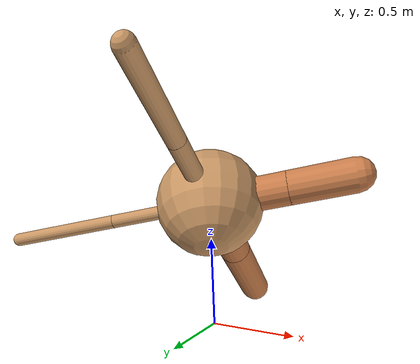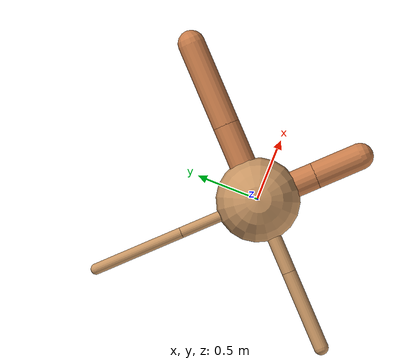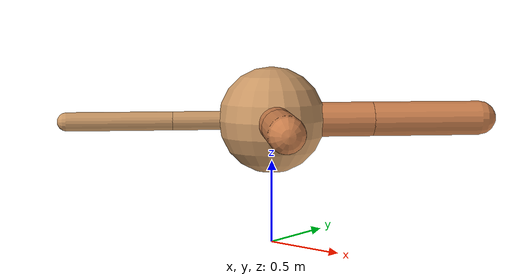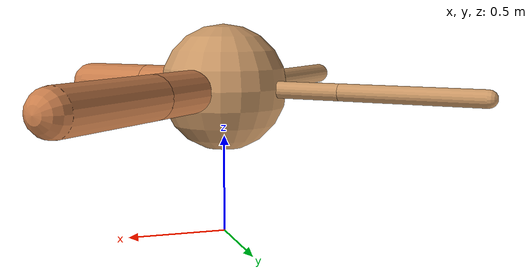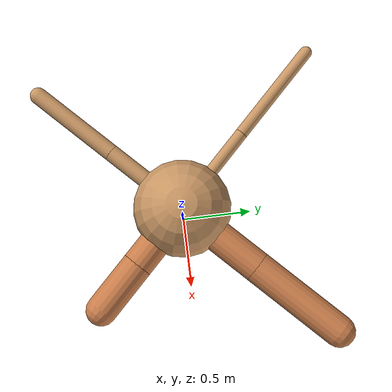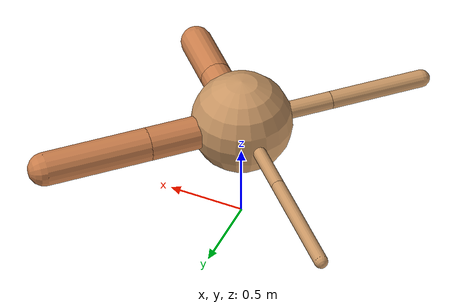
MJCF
<?xml version="1.0" ?>
<mujoco model="ant">

	<compiler angle="degree" coordinate="local" inertiafromgeom="true"/>

	<option integrator="RK4" timestep="0.01"/>

	<custom>

		<numeric data="0.0 0.0 0.55 1.0 0.0 0.0 0.0 0.0 1.0 0.0 -1.0 0.0 -1.0 0.0 1.0" name="init_qpos"/>

	</custom>

	<default>

		<joint armature="1" damping="1" limited="true"/>

		<geom conaffinity="0" condim="3" density="5.0" friction="1.5 0.1 0.1" margin="0.01" rgba="0.8 0.6 0.4 1"/>

	</default>

	<worldbody>

		<body name="torso" pos="0 0 0.75">

			<geom name="torso_geom" pos="0 0 0" size="0.32136705652196035" type="sphere"/>

			<!--joint armature="0" damping="0" limited="false" margin="0.01" name="root" pos="0 0 0" type="free"/-->

			<body name="front_left_leg" pos="0 0 0">

				<geom fromto="0 0 0 0.2 0.2 0" name="aux_1_geom" size="0.10447255423577335" type="capsule" rgba=".8 .5 .3 1"/>

				<body name="aux_1" pos="0.2 0.2 0">

					<joint axis="0 0 1" name="hip_1" pos="0.0 0.0 0.0" range="-40 40" type="hinge"/>

					<geom fromto="0 0 0 0.2363052864446149 0.2363052864446149 0" name="left_leg_geom" size="0.10447255423577335" type="capsule" rgba=".8 .5 .3 1"/>

					<body pos="0.2363052864446149 0.2363052864446149 0" name="front_left_foot">

						<joint axis="-1 1 0" name="ankle_1" pos="0.0 0.0 0.0" range="30 100" type="hinge"/>

						<geom fromto="0 0 0 0.4726105728892298 0.4726105728892298 0" name="left_ankle_geom" size="0.10447255423577335" type="capsule" rgba=".8 .5 .3 1"/>

					</body>

				</body>

			</body>

			<body name="front_right_leg" pos="0 0 0">

				<geom fromto="0 0 0 -0.2 0.2 0" name="aux_2_geom" size="0.041855642805652626" type="capsule"/>

				<body name="aux_2" pos="-0.2 0.2 0">

					<joint axis="0 0 1" name="hip_2" pos="0.0 0.0 0.0" range="-40 40" type="hinge"/>

					<geom fromto="0 0 0 -0.2473477729753135 0.2473477729753135 0" name="right_leg_geom" size="0.041855642805652626" type="capsule"/>

					<body pos="-0.2473477729753135 0.2473477729753135 0" name="front_right_foot">

						<joint axis="1 1 0" name="ankle_2" pos="0.0 0.0 0.0" range="-100 -30" type="hinge"/>

						<geom fromto="0 0 0 -0.494695545950627 0.494695545950627 0" name="right_ankle_geom" size="0.041855642805652626" type="capsule"/>

					</body>

				</body>

			</body>

			<body name="left_back_leg" pos="0 0 0">

				<geom fromto="0 0 0 -0.2 -0.2 0" name="aux_3_geom" size="0.05588927520497663" type="capsule"/>

				<body name="aux_3" pos="-0.2 -0.2 0">

					<joint axis="0 0 1" name="hip_3" pos="0.0 0.0 0.0" range="-40 40" type="hinge"/>

					<geom fromto="0 0 0 -0.2200809308846881 -0.2200809308846881 0" name="back_leg_geom" size="0.05588927520497663" type="capsule"/>

					<body pos="-0.2200809308846881 -0.2200809308846881 0" name="left_back_foot">

						<joint axis="-1 1 0" name="ankle_3" pos="0.0 0.0 0.0" range="-100 -30" type="hinge"/>

						<geom fromto="0 0 0 -0.4401618617693762 -0.4401618617693762 0" name="third_ankle_geom" size="0.05588927520497663" type="capsule"/>

					</body>

				</body>

			</body>

			<body name="right_back_leg" pos="0 0 0">

				<geom fromto="0 0 0 0.2 -0.2 0" name="aux_4_geom" size="0.1023518549252567" type="capsule" rgba=".8 .5 .3 1"/>

				<body name="aux_4" pos="0.2 -0.2 0">

					<joint axis="0 0 1" name="hip_4" pos="0.0 0.0 0.0" range="-40 40" type="hinge"/>

					<geom fromto="0 0 0 0.13142916167190502 -0.13142916167190502 0" name="rightback_leg_geom" size="0.1023518549252567" type="capsule" rgba=".8 .5 .3 1"/>

					<body pos="0.13142916167190502 -0.13142916167190502 0" name="right_back_foot">

						<joint axis="1 1 0" name="ankle_4" pos="0.0 0.0 0.0" range="30 100" type="hinge"/>

						<geom fromto="0 0 0 0.26285832334381004 -0.26285832334381004 0" name="fourth_ankle_geom" size="0.1023518549252567" type="capsule" rgba=".8 .5 .3 1"/>

					</body>

				</body>

			</body>

		</body>

	</worldbody>

	<actuator>

		<motor ctrllimited="true" ctrlrange="-1.0 1.0" joint="hip_4" gear="150"/>

		<motor ctrllimited="true" ctrlrange="-1.0 1.0" joint="ankle_4" gear="150"/>

		<motor ctrllimited="true" ctrlrange="-1.0 1.0" joint="hip_1" gear="150"/>

		<motor ctrllimited="true" ctrlrange="-1.0 1.0" joint="ankle_1" gear="150"/>

		<motor ctrllimited="true" ctrlrange="-1.0 1.0" joint="hip_2" gear="150"/>

		<motor ctrllimited="true" ctrlrange="-1.0 1.0" joint="ankle_2" gear="150"/>

		<motor ctrllimited="true" ctrlrange="-1.0 1.0" joint="hip_3" gear="150"/>

		<motor ctrllimited="true" ctrlrange="-1.0 1.0" joint="ankle_3" gear="150"/>

	</actuator>

</mujoco>
